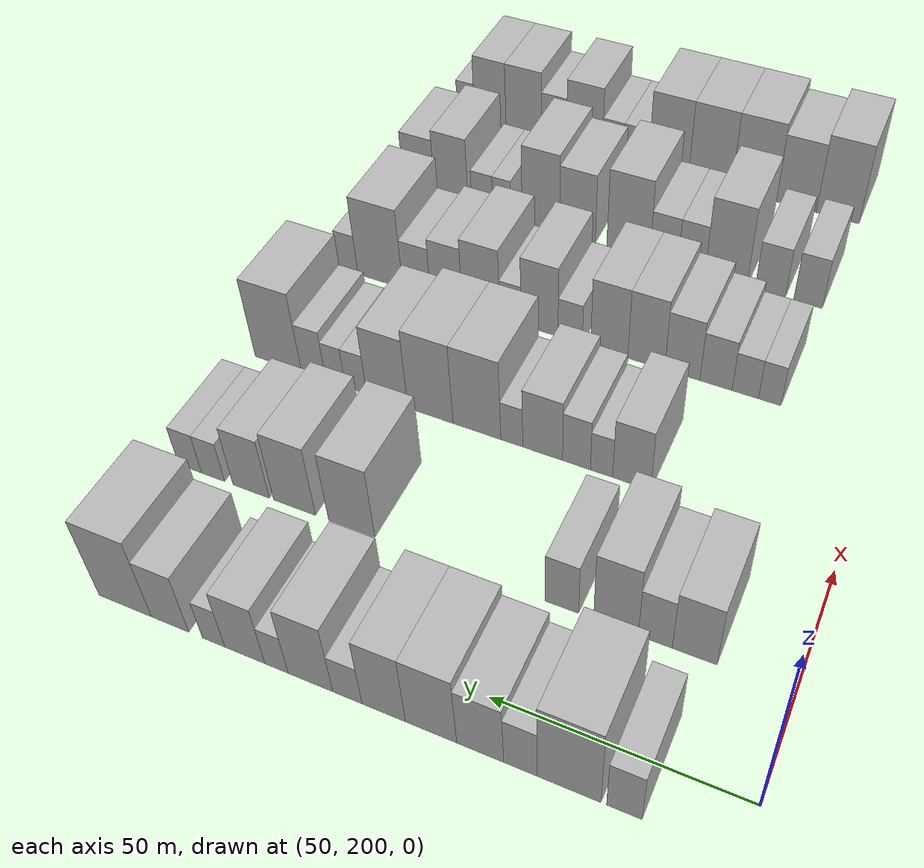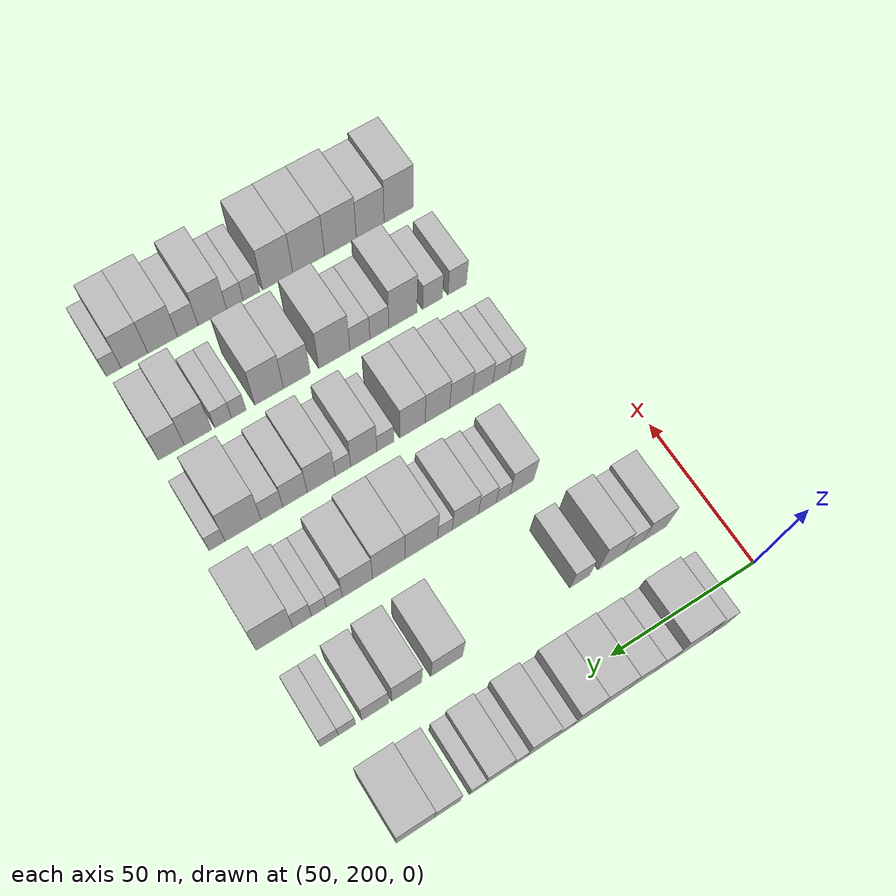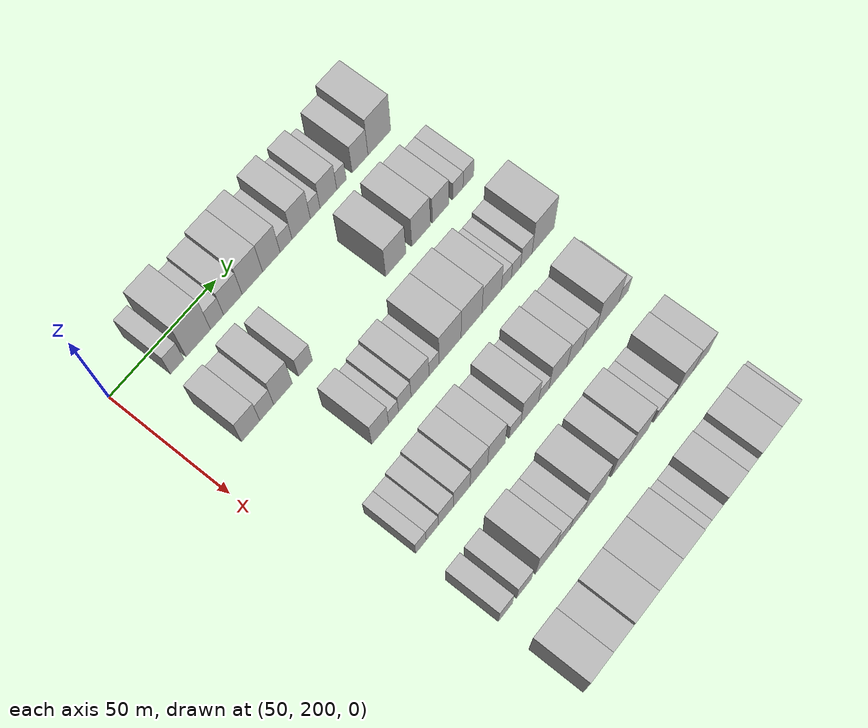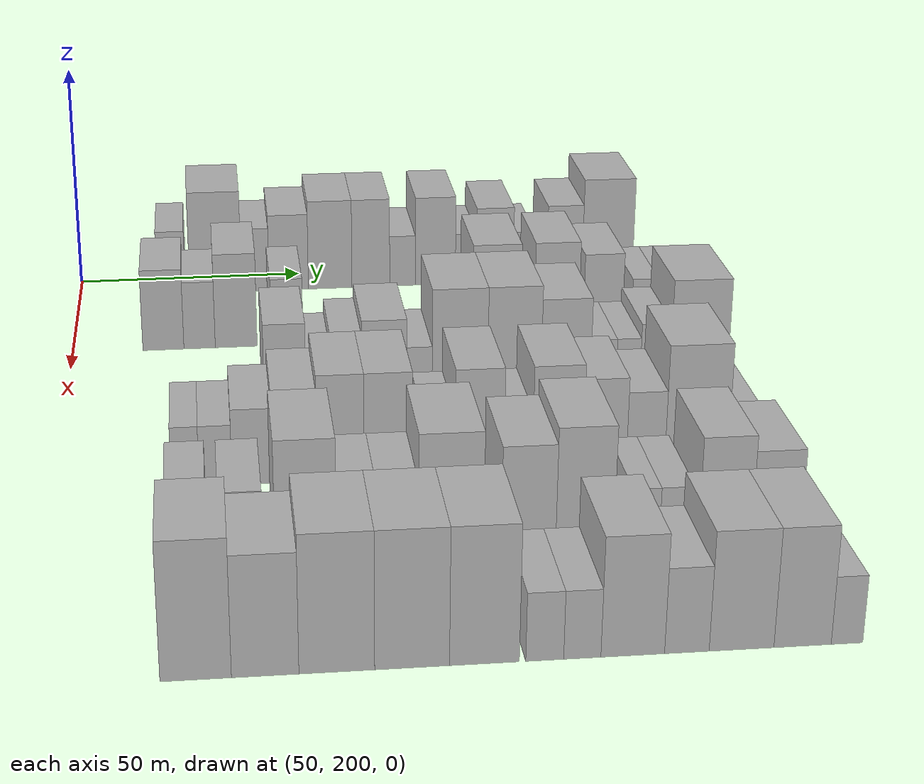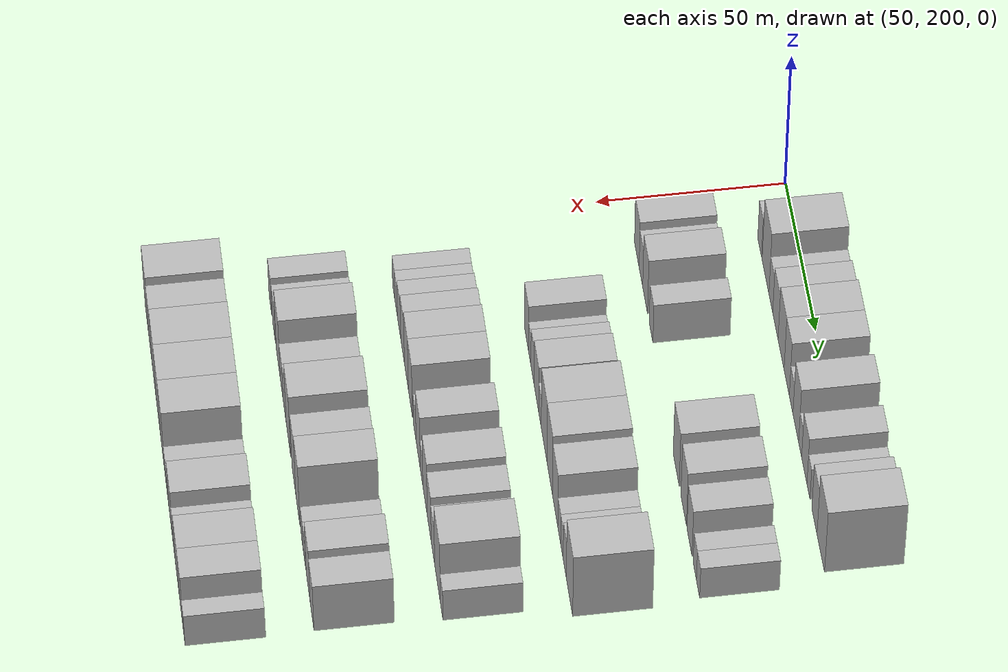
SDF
<sdf version="1.6">
 <world name="default">
  <model name="building_89">
   <static>1</static>
   <pose>50.0000 220.5800 0 0.000000 0.000000 0.000000</pose>
   <link name="link">
    <pose>0 0 7.50 0 0 0</pose>
    <collision name="collision"><geometry><box><size>20.0000 6.3352 15.0000</size></box></geometry></collision>
    <visual name="visual">
     <cast_shadows>0</cast_shadows>
     <geometry><box><size>20.0000 6.3352 15.0000</size></box></geometry>
     <material>
      <script>
       <uri>model://HANNAS_wall/materials/scripts</uri>
       <uri>model://HANNAS_wall/materials/textures</uri>
       <name>vrc/HANNAS_wall</name>
      </script>
     </material>
    </visual>
   </link>
  </model>
  <model name="building_90">
   <static>1</static>
   <pose>50.0000 230.5719 0 0.000000 0.000000 0.000000</pose>
   <link name="link">
    <pose>0 0 12.00 0 0 0</pose>
    <collision name="collision"><geometry><box><size>20.0000 11.6486 24.0000</size></box></geometry></collision>
    <visual name="visual">
     <cast_shadows>0</cast_shadows>
     <geometry><box><size>20.0000 11.6486 24.0000</size></box></geometry>
     <material>
      <script>
       <uri>model://HANNAS_wall/materials/scripts</uri>
       <uri>model://HANNAS_wall/materials/textures</uri>
       <name>vrc/HANNAS_wall</name>
      </script>
     </material>
    </visual>
   </link>
  </model>
  <model name="building_91">
   <static>1</static>
   <pose>50.0000 239.5321 0 0.000000 0.000000 0.000000</pose>
   <link name="link">
    <pose>0 0 7.50 0 0 0</pose>
    <collision name="collision"><geometry><box><size>20.0000 6.2717 15.0000</size></box></geometry></collision>
    <visual name="visual">
     <cast_shadows>0</cast_shadows>
     <geometry><box><size>20.0000 6.2717 15.0000</size></box></geometry>
     <material>
      <script>
       <uri>model://HANNAS_wall/materials/scripts</uri>
       <uri>model://HANNAS_wall/materials/textures</uri>
       <name>vrc/HANNAS_wall</name>
      </script>
     </material>
    </visual>
   </link>
  </model>
  <model name="building_92">
   <static>1</static>
   <pose>50.0000 247.1359 0 0.000000 0.000000 0.000000</pose>
   <link name="link">
    <pose>0 0 9.00 0 0 0</pose>
    <collision name="collision"><geometry><box><size>20.0000 8.9359 18.0000</size></box></geometry></collision>
    <visual name="visual">
     <cast_shadows>0</cast_shadows>
     <geometry><box><size>20.0000 8.9359 18.0000</size></box></geometry>
     <material>
      <script>
       <uri>model://HANNAS_wall/materials/scripts</uri>
       <uri>model://HANNAS_wall/materials/textures</uri>
       <name>vrc/HANNAS_wall</name>
      </script>
     </material>
    </visual>
   </link>
  </model>
  <model name="building_93">
   <static>1</static>
   <pose>50.0000 256.5881 0 0.000000 0.000000 0.000000</pose>
   <link name="link">
    <pose>0 0 10.50 0 0 0</pose>
    <collision name="collision"><geometry><box><size>20.0000 9.9685 21.0000</size></box></geometry></collision>
    <visual name="visual">
     <cast_shadows>0</cast_shadows>
     <geometry><box><size>20.0000 9.9685 21.0000</size></box></geometry>
     <material>
      <script>
       <uri>model://HANNAS_wall/materials/scripts</uri>
       <uri>model://HANNAS_wall/materials/textures</uri>
       <name>vrc/HANNAS_wall</name>
      </script>
     </material>
    </visual>
   </link>
  </model>
  <model name="building_94">
   <static>1</static>
   <pose>50.0000 265.9049 0 0.000000 0.000000 0.000000</pose>
   <link name="link">
    <pose>0 0 10.50 0 0 0</pose>
    <collision name="collision"><geometry><box><size>20.0000 8.6650 21.0000</size></box></geometry></collision>
    <visual name="visual">
     <cast_shadows>0</cast_shadows>
     <geometry><box><size>20.0000 8.6650 21.0000</size></box></geometry>
     <material>
      <script>
       <uri>model://HANNAS_wall/materials/scripts</uri>
       <uri>model://HANNAS_wall/materials/textures</uri>
       <name>vrc/HANNAS_wall</name>
      </script>
     </material>
    </visual>
   </link>
  </model>
  <model name="building_95">
   <static>1</static>
   <pose>50.0000 273.1896 0 0.000000 0.000000 0.000000</pose>
   <link name="link">
    <pose>0 0 6.00 0 0 0</pose>
    <collision name="collision"><geometry><box><size>20.0000 5.9045 12.0000</size></box></geometry></collision>
    <visual name="visual">
     <cast_shadows>0</cast_shadows>
     <geometry><box><size>20.0000 5.9045 12.0000</size></box></geometry>
     <material>
      <script>
       <uri>model://HANNAS_wall/materials/scripts</uri>
       <uri>model://HANNAS_wall/materials/textures</uri>
       <name>vrc/HANNAS_wall</name>
      </script>
     </material>
    </visual>
   </link>
  </model>
  <model name="building_96">
   <static>1</static>
   <pose>50.0000 280.7574 0 0.000000 0.000000 0.000000</pose>
   <link name="link">
    <pose>0 0 10.50 0 0 0</pose>
    <collision name="collision"><geometry><box><size>20.0000 9.2312 21.0000</size></box></geometry></collision>
    <visual name="visual">
     <cast_shadows>0</cast_shadows>
     <geometry><box><size>20.0000 9.2312 21.0000</size></box></geometry>
     <material>
      <script>
       <uri>model://HANNAS_wall/materials/scripts</uri>
       <uri>model://HANNAS_wall/materials/textures</uri>
       <name>vrc/HANNAS_wall</name>
      </script>
     </material>
    </visual>
   </link>
  </model>
  <model name="building_97">
   <static>1</static>
   <pose>50.0000 287.8098 0 0.000000 0.000000 0.000000</pose>
   <link name="link">
    <pose>0 0 6.00 0 0 0</pose>
    <collision name="collision"><geometry><box><size>20.0000 4.8734 12.0000</size></box></geometry></collision>
    <visual name="visual">
     <cast_shadows>0</cast_shadows>
     <geometry><box><size>20.0000 4.8734 12.0000</size></box></geometry>
     <material>
      <script>
       <uri>model://HANNAS_wall/materials/scripts</uri>
       <uri>model://HANNAS_wall/materials/textures</uri>
       <name>vrc/HANNAS_wall</name>
      </script>
     </material>
    </visual>
   </link>
  </model>
  <model name="building_98">
   <static>1</static>
   <pose>50.0000 294.5105 0 0.000000 0.000000 0.000000</pose>
   <link name="link">
    <pose>0 0 9.00 0 0 0</pose>
    <collision name="collision"><geometry><box><size>20.0000 8.5280 18.0000</size></box></geometry></collision>
    <visual name="visual">
     <cast_shadows>0</cast_shadows>
     <geometry><box><size>20.0000 8.5280 18.0000</size></box></geometry>
     <material>
      <script>
       <uri>model://HANNAS_wall/materials/scripts</uri>
       <uri>model://HANNAS_wall/materials/textures</uri>
       <name>vrc/HANNAS_wall</name>
      </script>
     </material>
    </visual>
   </link>
  </model>
  <model name="building_99">
   <static>1</static>
   <pose>50.0000 301.1923 0 0.000000 0.000000 0.000000</pose>
   <link name="link">
    <pose>0 0 6.00 0 0 0</pose>
    <collision name="collision"><geometry><box><size>20.0000 4.8356 12.0000</size></box></geometry></collision>
    <visual name="visual">
     <cast_shadows>0</cast_shadows>
     <geometry><box><size>20.0000 4.8356 12.0000</size></box></geometry>
     <material>
      <script>
       <uri>model://HANNAS_wall/materials/scripts</uri>
       <uri>model://HANNAS_wall/materials/textures</uri>
       <name>vrc/HANNAS_wall</name>
      </script>
     </material>
    </visual>
   </link>
  </model>
  <model name="building_100">
   <static>1</static>
   <pose>50.0000 310.7289 0 0.000000 0.000000 0.000000</pose>
   <link name="link">
    <pose>0 0 9.00 0 0 0</pose>
    <collision name="collision"><geometry><box><size>20.0000 8.2376 18.0000</size></box></geometry></collision>
    <visual name="visual">
     <cast_shadows>0</cast_shadows>
     <geometry><box><size>20.0000 8.2376 18.0000</size></box></geometry>
     <material>
      <script>
       <uri>model://HANNAS_wall/materials/scripts</uri>
       <uri>model://HANNAS_wall/materials/textures</uri>
       <name>vrc/HANNAS_wall</name>
      </script>
     </material>
    </visual>
   </link>
  </model>
  <model name="building_101">
   <static>1</static>
   <pose>50.0000 320.7621 0 0.000000 0.000000 0.000000</pose>
   <link name="link">
    <pose>0 0 12.00 0 0 0</pose>
    <collision name="collision"><geometry><box><size>20.0000 11.8289 24.0000</size></box></geometry></collision>
    <visual name="visual">
     <cast_shadows>0</cast_shadows>
     <geometry><box><size>20.0000 11.8289 24.0000</size></box></geometry>
     <material>
      <script>
       <uri>model://HANNAS_wall/materials/scripts</uri>
       <uri>model://HANNAS_wall/materials/textures</uri>
       <name>vrc/HANNAS_wall</name>
      </script>
     </material>
    </visual>
   </link>
  </model>
  <model name="building_212">
   <static>1</static>
   <pose>82.0000 219.0305 0 0.000000 0.000000 0.000000</pose>
   <link name="link">
    <pose>0 0 9.00 0 0 0</pose>
    <collision name="collision"><geometry><box><size>20.0000 8.6243 18.0000</size></box></geometry></collision>
    <visual name="visual">
     <cast_shadows>0</cast_shadows>
     <geometry><box><size>20.0000 8.6243 18.0000</size></box></geometry>
     <material>
      <script>
       <uri>model://HANNAS_wall/materials/scripts</uri>
       <uri>model://HANNAS_wall/materials/textures</uri>
       <name>vrc/HANNAS_wall</name>
      </script>
     </material>
    </visual>
   </link>
  </model>
  <model name="building_213">
   <static>1</static>
   <pose>82.0000 226.6491 0 0.000000 0.000000 0.000000</pose>
   <link name="link">
    <pose>0 0 7.50 0 0 0</pose>
    <collision name="collision"><geometry><box><size>20.0000 6.6129 15.0000</size></box></geometry></collision>
    <visual name="visual">
     <cast_shadows>0</cast_shadows>
     <geometry><box><size>20.0000 6.6129 15.0000</size></box></geometry>
     <material>
      <script>
       <uri>model://HANNAS_wall/materials/scripts</uri>
       <uri>model://HANNAS_wall/materials/textures</uri>
       <name>vrc/HANNAS_wall</name>
      </script>
     </material>
    </visual>
   </link>
  </model>
  <model name="building_214">
   <static>1</static>
   <pose>82.0000 234.3882 0 0.000000 0.000000 0.000000</pose>
   <link name="link">
    <pose>0 0 10.50 0 0 0</pose>
    <collision name="collision"><geometry><box><size>20.0000 8.8653 21.0000</size></box></geometry></collision>
    <visual name="visual">
     <cast_shadows>0</cast_shadows>
     <geometry><box><size>20.0000 8.8653 21.0000</size></box></geometry>
     <material>
      <script>
       <uri>model://HANNAS_wall/materials/scripts</uri>
       <uri>model://HANNAS_wall/materials/textures</uri>
       <name>vrc/HANNAS_wall</name>
      </script>
     </material>
    </visual>
   </link>
  </model>
  <model name="building_215">
   <static>1</static>
   <pose>82.0000 245.1997 0 0.000000 0.000000 0.000000</pose>
   <link name="link">
    <pose>0 0 7.50 0 0 0</pose>
    <collision name="collision"><geometry><box><size>20.0000 6.7576 15.0000</size></box></geometry></collision>
    <visual name="visual">
     <cast_shadows>0</cast_shadows>
     <geometry><box><size>20.0000 6.7576 15.0000</size></box></geometry>
     <material>
      <script>
       <uri>model://HANNAS_wall/materials/scripts</uri>
       <uri>model://HANNAS_wall/materials/textures</uri>
       <name>vrc/HANNAS_wall</name>
      </script>
     </material>
    </visual>
   </link>
  </model>
  <model name="building_216">
   <static>1</static>
   <pose>82.0000 290.1414 0 0.000000 0.000000 0.000000</pose>
   <link name="link">
    <pose>0 0 10.50 0 0 0</pose>
    <collision name="collision"><geometry><box><size>20.0000 10.3753 21.0000</size></box></geometry></collision>
    <visual name="visual">
     <cast_shadows>0</cast_shadows>
     <geometry><box><size>20.0000 10.3753 21.0000</size></box></geometry>
     <material>
      <script>
       <uri>model://HANNAS_wall/materials/scripts</uri>
       <uri>model://HANNAS_wall/materials/textures</uri>
       <name>vrc/HANNAS_wall</name>
      </script>
     </material>
    </visual>
   </link>
  </model>
  <model name="building_217">
   <static>1</static>
   <pose>82.0000 303.1638 0 0.000000 0.000000 0.000000</pose>
   <link name="link">
    <pose>0 0 10.50 0 0 0</pose>
    <collision name="collision"><geometry><box><size>20.0000 9.6696 21.0000</size></box></geometry></collision>
    <visual name="visual">
     <cast_shadows>0</cast_shadows>
     <geometry><box><size>20.0000 9.6696 21.0000</size></box></geometry>
     <material>
      <script>
       <uri>model://HANNAS_wall/materials/scripts</uri>
       <uri>model://HANNAS_wall/materials/textures</uri>
       <name>vrc/HANNAS_wall</name>
      </script>
     </material>
    </visual>
   </link>
  </model>
  <model name="building_218">
   <static>1</static>
   <pose>82.0000 313.2836 0 0.000000 0.000000 0.000000</pose>
   <link name="link">
    <pose>0 0 9.00 0 0 0</pose>
    <collision name="collision"><geometry><box><size>20.0000 8.5700 18.0000</size></box></geometry></collision>
    <visual name="visual">
     <cast_shadows>0</cast_shadows>
     <geometry><box><size>20.0000 8.5700 18.0000</size></box></geometry>
     <material>
      <script>
       <uri>model://HANNAS_wall/materials/scripts</uri>
       <uri>model://HANNAS_wall/materials/textures</uri>
       <name>vrc/HANNAS_wall</name>
      </script>
     </material>
    </visual>
   </link>
  </model>
  <model name="building_219">
   <static>1</static>
   <pose>82.0000 322.3333 0 0.000000 0.000000 0.000000</pose>
   <link name="link">
    <pose>0 0 6.00 0 0 0</pose>
    <collision name="collision"><geometry><box><size>20.0000 5.5294 12.0000</size></box></geometry></collision>
    <visual name="visual">
     <cast_shadows>0</cast_shadows>
     <geometry><box><size>20.0000 5.5294 12.0000</size></box></geometry>
     <material>
      <script>
       <uri>model://HANNAS_wall/materials/scripts</uri>
       <uri>model://HANNAS_wall/materials/textures</uri>
       <name>vrc/HANNAS_wall</name>
      </script>
     </material>
    </visual>
   </link>
  </model>
  <model name="building_220">
   <static>1</static>
   <pose>82.0000 327.8939 0 0.000000 0.000000 0.000000</pose>
   <link name="link">
    <pose>0 0 6.00 0 0 0</pose>
    <collision name="collision"><geometry><box><size>20.0000 5.5918 12.0000</size></box></geometry></collision>
    <visual name="visual">
     <cast_shadows>0</cast_shadows>
     <geometry><box><size>20.0000 5.5918 12.0000</size></box></geometry>
     <material>
      <script>
       <uri>model://HANNAS_wall/materials/scripts</uri>
       <uri>model://HANNAS_wall/materials/textures</uri>
       <name>vrc/HANNAS_wall</name>
      </script>
     </material>
    </visual>
   </link>
  </model>
  <model name="building_325">
   <static>1</static>
   <pose>114.0000 243.2539 0 0.000000 0.000000 0.000000</pose>
   <link name="link">
    <pose>0 0 9.00 0 0 0</pose>
    <collision name="collision"><geometry><box><size>20.0000 8.2488 18.0000</size></box></geometry></collision>
    <visual name="visual">
     <cast_shadows>0</cast_shadows>
     <geometry><box><size>20.0000 8.2488 18.0000</size></box></geometry>
     <material>
      <script>
       <uri>model://HANNAS_wall/materials/scripts</uri>
       <uri>model://HANNAS_wall/materials/textures</uri>
       <name>vrc/HANNAS_wall</name>
      </script>
     </material>
    </visual>
   </link>
  </model>
  <model name="building_326">
   <static>1</static>
   <pose>114.0000 249.8145 0 0.000000 0.000000 0.000000</pose>
   <link name="link">
    <pose>0 0 6.00 0 0 0</pose>
    <collision name="collision"><geometry><box><size>20.0000 4.8725 12.0000</size></box></geometry></collision>
    <visual name="visual">
     <cast_shadows>0</cast_shadows>
     <geometry><box><size>20.0000 4.8725 12.0000</size></box></geometry>
     <material>
      <script>
       <uri>model://HANNAS_wall/materials/scripts</uri>
       <uri>model://HANNAS_wall/materials/textures</uri>
       <name>vrc/HANNAS_wall</name>
      </script>
     </material>
    </visual>
   </link>
  </model>
  <model name="building_327">
   <static>1</static>
   <pose>114.0000 255.3429 0 0.000000 0.000000 0.000000</pose>
   <link name="link">
    <pose>0 0 7.50 0 0 0</pose>
    <collision name="collision"><geometry><box><size>20.0000 6.1842 15.0000</size></box></geometry></collision>
    <visual name="visual">
     <cast_shadows>0</cast_shadows>
     <geometry><box><size>20.0000 6.1842 15.0000</size></box></geometry>
     <material>
      <script>
       <uri>model://HANNAS_wall/materials/scripts</uri>
       <uri>model://HANNAS_wall/materials/textures</uri>
       <name>vrc/HANNAS_wall</name>
      </script>
     </material>
    </visual>
   </link>
  </model>
  <model name="building_328">
   <static>1</static>
   <pose>114.0000 262.9197 0 0.000000 0.000000 0.000000</pose>
   <link name="link">
    <pose>0 0 9.00 0 0 0</pose>
    <collision name="collision"><geometry><box><size>20.0000 8.9694 18.0000</size></box></geometry></collision>
    <visual name="visual">
     <cast_shadows>0</cast_shadows>
     <geometry><box><size>20.0000 8.9694 18.0000</size></box></geometry>
     <material>
      <script>
       <uri>model://HANNAS_wall/materials/scripts</uri>
       <uri>model://HANNAS_wall/materials/textures</uri>
       <name>vrc/HANNAS_wall</name>
      </script>
     </material>
    </visual>
   </link>
  </model>
  <model name="building_329">
   <static>1</static>
   <pose>114.0000 269.9115 0 0.000000 0.000000 0.000000</pose>
   <link name="link">
    <pose>0 0 6.00 0 0 0</pose>
    <collision name="collision"><geometry><box><size>20.0000 5.0141 12.0000</size></box></geometry></collision>
    <visual name="visual">
     <cast_shadows>0</cast_shadows>
     <geometry><box><size>20.0000 5.0141 12.0000</size></box></geometry>
     <material>
      <script>
       <uri>model://HANNAS_wall/materials/scripts</uri>
       <uri>model://HANNAS_wall/materials/textures</uri>
       <name>vrc/HANNAS_wall</name>
      </script>
     </material>
    </visual>
   </link>
  </model>
  <model name="building_330">
   <static>1</static>
   <pose>114.0000 277.9728 0 0.000000 0.000000 0.000000</pose>
   <link name="link">
    <pose>0 0 12.00 0 0 0</pose>
    <collision name="collision"><geometry><box><size>20.0000 11.1086 24.0000</size></box></geometry></collision>
    <visual name="visual">
     <cast_shadows>0</cast_shadows>
     <geometry><box><size>20.0000 11.1086 24.0000</size></box></geometry>
     <material>
      <script>
       <uri>model://HANNAS_wall/materials/scripts</uri>
       <uri>model://HANNAS_wall/materials/textures</uri>
       <name>vrc/HANNAS_wall</name>
      </script>
     </material>
    </visual>
   </link>
  </model>
  <model name="building_331">
   <static>1</static>
   <pose>114.0000 288.9025 0 0.000000 0.000000 0.000000</pose>
   <link name="link">
    <pose>0 0 12.00 0 0 0</pose>
    <collision name="collision"><geometry><box><size>20.0000 10.7508 24.0000</size></box></geometry></collision>
    <visual name="visual">
     <cast_shadows>0</cast_shadows>
     <geometry><box><size>20.0000 10.7508 24.0000</size></box></geometry>
     <material>
      <script>
       <uri>model://HANNAS_wall/materials/scripts</uri>
       <uri>model://HANNAS_wall/materials/textures</uri>
       <name>vrc/HANNAS_wall</name>
      </script>
     </material>
    </visual>
   </link>
  </model>
  <model name="building_332">
   <static>1</static>
   <pose>114.0000 299.2854 0 0.000000 0.000000 0.000000</pose>
   <link name="link">
    <pose>0 0 10.50 0 0 0</pose>
    <collision name="collision"><geometry><box><size>20.0000 10.0150 21.0000</size></box></geometry></collision>
    <visual name="visual">
     <cast_shadows>0</cast_shadows>
     <geometry><box><size>20.0000 10.0150 21.0000</size></box></geometry>
     <material>
      <script>
       <uri>model://HANNAS_wall/materials/scripts</uri>
       <uri>model://HANNAS_wall/materials/textures</uri>
       <name>vrc/HANNAS_wall</name>
      </script>
     </material>
    </visual>
   </link>
  </model>
  <model name="building_333">
   <static>1</static>
   <pose>114.0000 306.9075 0 0.000000 0.000000 0.000000</pose>
   <link name="link">
    <pose>0 0 6.00 0 0 0</pose>
    <collision name="collision"><geometry><box><size>20.0000 5.2292 12.0000</size></box></geometry></collision>
    <visual name="visual">
     <cast_shadows>0</cast_shadows>
     <geometry><box><size>20.0000 5.2292 12.0000</size></box></geometry>
     <material>
      <script>
       <uri>model://HANNAS_wall/materials/scripts</uri>
       <uri>model://HANNAS_wall/materials/textures</uri>
       <name>vrc/HANNAS_wall</name>
      </script>
     </material>
    </visual>
   </link>
  </model>
  <model name="building_334">
   <static>1</static>
   <pose>114.0000 311.9484 0 0.000000 0.000000 0.000000</pose>
   <link name="link">
    <pose>0 0 6.00 0 0 0</pose>
    <collision name="collision"><geometry><box><size>20.0000 4.8525 12.0000</size></box></geometry></collision>
    <visual name="visual">
     <cast_shadows>0</cast_shadows>
     <geometry><box><size>20.0000 4.8525 12.0000</size></box></geometry>
     <material>
      <script>
       <uri>model://HANNAS_wall/materials/scripts</uri>
       <uri>model://HANNAS_wall/materials/textures</uri>
       <name>vrc/HANNAS_wall</name>
      </script>
     </material>
    </visual>
   </link>
  </model>
  <model name="building_335">
   <static>1</static>
   <pose>114.0000 317.4246 0 0.000000 0.000000 0.000000</pose>
   <link name="link">
    <pose>0 0 7.50 0 0 0</pose>
    <collision name="collision"><geometry><box><size>20.0000 6.1000 15.0000</size></box></geometry></collision>
    <visual name="visual">
     <cast_shadows>0</cast_shadows>
     <geometry><box><size>20.0000 6.1000 15.0000</size></box></geometry>
     <material>
      <script>
       <uri>model://HANNAS_wall/materials/scripts</uri>
       <uri>model://HANNAS_wall/materials/textures</uri>
       <name>vrc/HANNAS_wall</name>
      </script>
     </material>
    </visual>
   </link>
  </model>
  <model name="building_336">
   <static>1</static>
   <pose>114.0000 326.3805 0 0.000000 0.000000 0.000000</pose>
   <link name="link">
    <pose>0 0 12.00 0 0 0</pose>
    <collision name="collision"><geometry><box><size>20.0000 11.8119 24.0000</size></box></geometry></collision>
    <visual name="visual">
     <cast_shadows>0</cast_shadows>
     <geometry><box><size>20.0000 11.8119 24.0000</size></box></geometry>
     <material>
      <script>
       <uri>model://HANNAS_wall/materials/scripts</uri>
       <uri>model://HANNAS_wall/materials/textures</uri>
       <name>vrc/HANNAS_wall</name>
      </script>
     </material>
    </visual>
   </link>
  </model>
  <model name="building_449">
   <static>1</static>
   <pose>146.0000 223.5713 0 0.000000 0.000000 0.000000</pose>
   <link name="link">
    <pose>0 0 6.00 0 0 0</pose>
    <collision name="collision"><geometry><box><size>20.0000 5.0233 12.0000</size></box></geometry></collision>
    <visual name="visual">
     <cast_shadows>0</cast_shadows>
     <geometry><box><size>20.0000 5.0233 12.0000</size></box></geometry>
     <material>
      <script>
       <uri>model://HANNAS_wall/materials/scripts</uri>
       <uri>model://HANNAS_wall/materials/textures</uri>
       <name>vrc/HANNAS_wall</name>
      </script>
     </material>
    </visual>
   </link>
  </model>
  <model name="building_450">
   <static>1</static>
   <pose>146.0000 229.0529 0 0.000000 0.000000 0.000000</pose>
   <link name="link">
    <pose>0 0 6.00 0 0 0</pose>
    <collision name="collision"><geometry><box><size>20.0000 5.9398 12.0000</size></box></geometry></collision>
    <visual name="visual">
     <cast_shadows>0</cast_shadows>
     <geometry><box><size>20.0000 5.9398 12.0000</size></box></geometry>
     <material>
      <script>
       <uri>model://HANNAS_wall/materials/scripts</uri>
       <uri>model://HANNAS_wall/materials/textures</uri>
       <name>vrc/HANNAS_wall</name>
      </script>
     </material>
    </visual>
   </link>
  </model>
  <model name="building_451">
   <static>1</static>
   <pose>146.0000 235.6812 0 0.000000 0.000000 0.000000</pose>
   <link name="link">
    <pose>0 0 7.50 0 0 0</pose>
    <collision name="collision"><geometry><box><size>20.0000 7.3168 15.0000</size></box></geometry></collision>
    <visual name="visual">
     <cast_shadows>0</cast_shadows>
     <geometry><box><size>20.0000 7.3168 15.0000</size></box></geometry>
     <material>
      <script>
       <uri>model://HANNAS_wall/materials/scripts</uri>
       <uri>model://HANNAS_wall/materials/textures</uri>
       <name>vrc/HANNAS_wall</name>
      </script>
     </material>
    </visual>
   </link>
  </model>
  <model name="building_452">
   <static>1</static>
   <pose>146.0000 243.4016 0 0.000000 0.000000 0.000000</pose>
   <link name="link">
    <pose>0 0 9.00 0 0 0</pose>
    <collision name="collision"><geometry><box><size>20.0000 8.1240 18.0000</size></box></geometry></collision>
    <visual name="visual">
     <cast_shadows>0</cast_shadows>
     <geometry><box><size>20.0000 8.1240 18.0000</size></box></geometry>
     <material>
      <script>
       <uri>model://HANNAS_wall/materials/scripts</uri>
       <uri>model://HANNAS_wall/materials/textures</uri>
       <name>vrc/HANNAS_wall</name>
      </script>
     </material>
    </visual>
   </link>
  </model>
  <model name="building_453">
   <static>1</static>
   <pose>146.0000 251.8084 0 0.000000 0.000000 0.000000</pose>
   <link name="link">
    <pose>0 0 10.50 0 0 0</pose>
    <collision name="collision"><geometry><box><size>20.0000 8.6896 21.0000</size></box></geometry></collision>
    <visual name="visual">
     <cast_shadows>0</cast_shadows>
     <geometry><box><size>20.0000 8.6896 21.0000</size></box></geometry>
     <material>
      <script>
       <uri>model://HANNAS_wall/materials/scripts</uri>
       <uri>model://HANNAS_wall/materials/textures</uri>
       <name>vrc/HANNAS_wall</name>
      </script>
     </material>
    </visual>
   </link>
  </model>
  <model name="building_454">
   <static>1</static>
   <pose>146.0000 260.5736 0 0.000000 0.000000 0.000000</pose>
   <link name="link">
    <pose>0 0 10.50 0 0 0</pose>
    <collision name="collision"><geometry><box><size>20.0000 8.8407 21.0000</size></box></geometry></collision>
    <visual name="visual">
     <cast_shadows>0</cast_shadows>
     <geometry><box><size>20.0000 8.8407 21.0000</size></box></geometry>
     <material>
      <script>
       <uri>model://HANNAS_wall/materials/scripts</uri>
       <uri>model://HANNAS_wall/materials/textures</uri>
       <name>vrc/HANNAS_wall</name>
      </script>
     </material>
    </visual>
   </link>
  </model>
  <model name="building_455">
   <static>1</static>
   <pose>146.0000 269.9517 0 0.000000 0.000000 0.000000</pose>
   <link name="link">
    <pose>0 0 6.00 0 0 0</pose>
    <collision name="collision"><geometry><box><size>20.0000 5.9155 12.0000</size></box></geometry></collision>
    <visual name="visual">
     <cast_shadows>0</cast_shadows>
     <geometry><box><size>20.0000 5.9155 12.0000</size></box></geometry>
     <material>
      <script>
       <uri>model://HANNAS_wall/materials/scripts</uri>
       <uri>model://HANNAS_wall/materials/textures</uri>
       <name>vrc/HANNAS_wall</name>
      </script>
     </material>
    </visual>
   </link>
  </model>
  <model name="building_456">
   <static>1</static>
   <pose>146.0000 277.4268 0 0.000000 0.000000 0.000000</pose>
   <link name="link">
    <pose>0 0 10.50 0 0 0</pose>
    <collision name="collision"><geometry><box><size>20.0000 9.0346 21.0000</size></box></geometry></collision>
    <visual name="visual">
     <cast_shadows>0</cast_shadows>
     <geometry><box><size>20.0000 9.0346 21.0000</size></box></geometry>
     <material>
      <script>
       <uri>model://HANNAS_wall/materials/scripts</uri>
       <uri>model://HANNAS_wall/materials/textures</uri>
       <name>vrc/HANNAS_wall</name>
      </script>
     </material>
    </visual>
   </link>
  </model>
  <model name="building_457">
   <static>1</static>
   <pose>146.0000 284.6040 0 0.000000 0.000000 0.000000</pose>
   <link name="link">
    <pose>0 0 6.00 0 0 0</pose>
    <collision name="collision"><geometry><box><size>20.0000 5.3198 12.0000</size></box></geometry></collision>
    <visual name="visual">
     <cast_shadows>0</cast_shadows>
     <geometry><box><size>20.0000 5.3198 12.0000</size></box></geometry>
     <material>
      <script>
       <uri>model://HANNAS_wall/materials/scripts</uri>
       <uri>model://HANNAS_wall/materials/textures</uri>
       <name>vrc/HANNAS_wall</name>
      </script>
     </material>
    </visual>
   </link>
  </model>
  <model name="building_458">
   <static>1</static>
   <pose>146.0000 291.9986 0 0.000000 0.000000 0.000000</pose>
   <link name="link">
    <pose>0 0 10.50 0 0 0</pose>
    <collision name="collision"><geometry><box><size>20.0000 9.4694 21.0000</size></box></geometry></collision>
    <visual name="visual">
     <cast_shadows>0</cast_shadows>
     <geometry><box><size>20.0000 9.4694 21.0000</size></box></geometry>
     <material>
      <script>
       <uri>model://HANNAS_wall/materials/scripts</uri>
       <uri>model://HANNAS_wall/materials/textures</uri>
       <name>vrc/HANNAS_wall</name>
      </script>
     </material>
    </visual>
   </link>
  </model>
  <model name="building_459">
   <static>1</static>
   <pose>146.0000 300.8150 0 0.000000 0.000000 0.000000</pose>
   <link name="link">
    <pose>0 0 9.00 0 0 0</pose>
    <collision name="collision"><geometry><box><size>20.0000 8.1634 18.0000</size></box></geometry></collision>
    <visual name="visual">
     <cast_shadows>0</cast_shadows>
     <geometry><box><size>20.0000 8.1634 18.0000</size></box></geometry>
     <material>
      <script>
       <uri>model://HANNAS_wall/materials/scripts</uri>
       <uri>model://HANNAS_wall/materials/textures</uri>
       <name>vrc/HANNAS_wall</name>
      </script>
     </material>
    </visual>
   </link>
  </model>
  <model name="building_460">
   <static>1</static>
   <pose>146.0000 308.5239 0 0.000000 0.000000 0.000000</pose>
   <link name="link">
    <pose>0 0 7.50 0 0 0</pose>
    <collision name="collision"><geometry><box><size>20.0000 7.2544 15.0000</size></box></geometry></collision>
    <visual name="visual">
     <cast_shadows>0</cast_shadows>
     <geometry><box><size>20.0000 7.2544 15.0000</size></box></geometry>
     <material>
      <script>
       <uri>model://HANNAS_wall/materials/scripts</uri>
       <uri>model://HANNAS_wall/materials/textures</uri>
       <name>vrc/HANNAS_wall</name>
      </script>
     </material>
    </visual>
   </link>
  </model>
  <model name="building_461">
   <static>1</static>
   <pose>146.0000 318.1218 0 0.000000 0.000000 0.000000</pose>
   <link name="link">
    <pose>0 0 12.00 0 0 0</pose>
    <collision name="collision"><geometry><box><size>20.0000 11.9415 24.0000</size></box></geometry></collision>
    <visual name="visual">
     <cast_shadows>0</cast_shadows>
     <geometry><box><size>20.0000 11.9415 24.0000</size></box></geometry>
     <material>
      <script>
       <uri>model://HANNAS_wall/materials/scripts</uri>
       <uri>model://HANNAS_wall/materials/textures</uri>
       <name>vrc/HANNAS_wall</name>
      </script>
     </material>
    </visual>
   </link>
  </model>
  <model name="building_462">
   <static>1</static>
   <pose>146.0000 326.7104 0 0.000000 0.000000 0.000000</pose>
   <link name="link">
    <pose>0 0 6.00 0 0 0</pose>
    <collision name="collision"><geometry><box><size>20.0000 5.2356 12.0000</size></box></geometry></collision>
    <visual name="visual">
     <cast_shadows>0</cast_shadows>
     <geometry><box><size>20.0000 5.2356 12.0000</size></box></geometry>
     <material>
      <script>
       <uri>model://HANNAS_wall/materials/scripts</uri>
       <uri>model://HANNAS_wall/materials/textures</uri>
       <name>vrc/HANNAS_wall</name>
      </script>
     </material>
    </visual>
   </link>
  </model>
  <model name="building_566">
   <static>1</static>
   <pose>178.0000 223.8212 0 0.000000 0.000000 0.000000</pose>
   <link name="link">
    <pose>0 0 7.50 0 0 0</pose>
    <collision name="collision"><geometry><box><size>20.0000 6.7909 15.0000</size></box></geometry></collision>
    <visual name="visual">
     <cast_shadows>0</cast_shadows>
     <geometry><box><size>20.0000 6.7909 15.0000</size></box></geometry>
     <material>
      <script>
       <uri>model://HANNAS_wall/materials/scripts</uri>
       <uri>model://HANNAS_wall/materials/textures</uri>
       <name>vrc/HANNAS_wall</name>
      </script>
     </material>
    </visual>
   </link>
  </model>
  <model name="building_567">
   <static>1</static>
   <pose>178.0000 232.8533 0 0.000000 0.000000 0.000000</pose>
   <link name="link">
    <pose>0 0 7.50 0 0 0</pose>
    <collision name="collision"><geometry><box><size>20.0000 7.2733 15.0000</size></box></geometry></collision>
    <visual name="visual">
     <cast_shadows>0</cast_shadows>
     <geometry><box><size>20.0000 7.2733 15.0000</size></box></geometry>
     <material>
      <script>
       <uri>model://HANNAS_wall/materials/scripts</uri>
       <uri>model://HANNAS_wall/materials/textures</uri>
       <name>vrc/HANNAS_wall</name>
      </script>
     </material>
    </visual>
   </link>
  </model>
  <model name="building_568">
   <static>1</static>
   <pose>178.0000 243.6174 0 0.000000 0.000000 0.000000</pose>
   <link name="link">
    <pose>0 0 12.00 0 0 0</pose>
    <collision name="collision"><geometry><box><size>20.0000 10.2550 24.0000</size></box></geometry></collision>
    <visual name="visual">
     <cast_shadows>0</cast_shadows>
     <geometry><box><size>20.0000 10.2550 24.0000</size></box></geometry>
     <material>
      <script>
       <uri>model://HANNAS_wall/materials/scripts</uri>
       <uri>model://HANNAS_wall/materials/textures</uri>
       <name>vrc/HANNAS_wall</name>
      </script>
     </material>
    </visual>
   </link>
  </model>
  <model name="building_569">
   <static>1</static>
   <pose>178.0000 252.1137 0 0.000000 0.000000 0.000000</pose>
   <link name="link">
    <pose>0 0 7.50 0 0 0</pose>
    <collision name="collision"><geometry><box><size>20.0000 6.7375 15.0000</size></box></geometry></collision>
    <visual name="visual">
     <cast_shadows>0</cast_shadows>
     <geometry><box><size>20.0000 6.7375 15.0000</size></box></geometry>
     <material>
      <script>
       <uri>model://HANNAS_wall/materials/scripts</uri>
       <uri>model://HANNAS_wall/materials/textures</uri>
       <name>vrc/HANNAS_wall</name>
      </script>
     </material>
    </visual>
   </link>
  </model>
  <model name="building_570">
   <static>1</static>
   <pose>178.0000 259.0361 0 0.000000 0.000000 0.000000</pose>
   <link name="link">
    <pose>0 0 7.50 0 0 0</pose>
    <collision name="collision"><geometry><box><size>20.0000 7.1075 15.0000</size></box></geometry></collision>
    <visual name="visual">
     <cast_shadows>0</cast_shadows>
     <geometry><box><size>20.0000 7.1075 15.0000</size></box></geometry>
     <material>
      <script>
       <uri>model://HANNAS_wall/materials/scripts</uri>
       <uri>model://HANNAS_wall/materials/textures</uri>
       <name>vrc/HANNAS_wall</name>
      </script>
     </material>
    </visual>
   </link>
  </model>
  <model name="building_571">
   <static>1</static>
   <pose>178.0000 268.0905 0 0.000000 0.000000 0.000000</pose>
   <link name="link">
    <pose>0 0 12.00 0 0 0</pose>
    <collision name="collision"><geometry><box><size>20.0000 11.0013 24.0000</size></box></geometry></collision>
    <visual name="visual">
     <cast_shadows>0</cast_shadows>
     <geometry><box><size>20.0000 11.0013 24.0000</size></box></geometry>
     <material>
      <script>
       <uri>model://HANNAS_wall/materials/scripts</uri>
       <uri>model://HANNAS_wall/materials/textures</uri>
       <name>vrc/HANNAS_wall</name>
      </script>
     </material>
    </visual>
   </link>
  </model>
  <model name="building_572">
   <static>1</static>
   <pose>178.0000 281.2419 0 0.000000 0.000000 0.000000</pose>
   <link name="link">
    <pose>0 0 10.50 0 0 0</pose>
    <collision name="collision"><geometry><box><size>20.0000 9.3014 21.0000</size></box></geometry></collision>
    <visual name="visual">
     <cast_shadows>0</cast_shadows>
     <geometry><box><size>20.0000 9.3014 21.0000</size></box></geometry>
     <material>
      <script>
       <uri>model://HANNAS_wall/materials/scripts</uri>
       <uri>model://HANNAS_wall/materials/textures</uri>
       <name>vrc/HANNAS_wall</name>
      </script>
     </material>
    </visual>
   </link>
  </model>
  <model name="building_573">
   <static>1</static>
   <pose>178.0000 290.8749 0 0.000000 0.000000 0.000000</pose>
   <link name="link">
    <pose>0 0 12.00 0 0 0</pose>
    <collision name="collision"><geometry><box><size>20.0000 9.9646 24.0000</size></box></geometry></collision>
    <visual name="visual">
     <cast_shadows>0</cast_shadows>
     <geometry><box><size>20.0000 9.9646 24.0000</size></box></geometry>
     <material>
      <script>
       <uri>model://HANNAS_wall/materials/scripts</uri>
       <uri>model://HANNAS_wall/materials/textures</uri>
       <name>vrc/HANNAS_wall</name>
      </script>
     </material>
    </visual>
   </link>
  </model>
  <model name="building_574">
   <static>1</static>
   <pose>178.0000 301.3120 0 0.000000 0.000000 0.000000</pose>
   <link name="link">
    <pose>0 0 6.00 0 0 0</pose>
    <collision name="collision"><geometry><box><size>20.0000 4.9095 12.0000</size></box></geometry></collision>
    <visual name="visual">
     <cast_shadows>0</cast_shadows>
     <geometry><box><size>20.0000 4.9095 12.0000</size></box></geometry>
     <material>
      <script>
       <uri>model://HANNAS_wall/materials/scripts</uri>
       <uri>model://HANNAS_wall/materials/textures</uri>
       <name>vrc/HANNAS_wall</name>
      </script>
     </material>
    </visual>
   </link>
  </model>
  <model name="building_575">
   <static>1</static>
   <pose>178.0000 306.6412 0 0.000000 0.000000 0.000000</pose>
   <link name="link">
    <pose>0 0 6.00 0 0 0</pose>
    <collision name="collision"><geometry><box><size>20.0000 5.7490 12.0000</size></box></geometry></collision>
    <visual name="visual">
     <cast_shadows>0</cast_shadows>
     <geometry><box><size>20.0000 5.7490 12.0000</size></box></geometry>
     <material>
      <script>
       <uri>model://HANNAS_wall/materials/scripts</uri>
       <uri>model://HANNAS_wall/materials/textures</uri>
       <name>vrc/HANNAS_wall</name>
      </script>
     </material>
    </visual>
   </link>
  </model>
  <model name="building_576">
   <static>1</static>
   <pose>178.0000 315.1472 0 0.000000 0.000000 0.000000</pose>
   <link name="link">
    <pose>0 0 10.50 0 0 0</pose>
    <collision name="collision"><geometry><box><size>20.0000 9.2629 21.0000</size></box></geometry></collision>
    <visual name="visual">
     <cast_shadows>0</cast_shadows>
     <geometry><box><size>20.0000 9.2629 21.0000</size></box></geometry>
     <material>
      <script>
       <uri>model://HANNAS_wall/materials/scripts</uri>
       <uri>model://HANNAS_wall/materials/textures</uri>
       <name>vrc/HANNAS_wall</name>
      </script>
     </material>
    </visual>
   </link>
  </model>
  <model name="building_577">
   <static>1</static>
   <pose>178.0000 324.1277 0 0.000000 0.000000 0.000000</pose>
   <link name="link">
    <pose>0 0 9.00 0 0 0</pose>
    <collision name="collision"><geometry><box><size>20.0000 8.6982 18.0000</size></box></geometry></collision>
    <visual name="visual">
     <cast_shadows>0</cast_shadows>
     <geometry><box><size>20.0000 8.6982 18.0000</size></box></geometry>
     <material>
      <script>
       <uri>model://HANNAS_wall/materials/scripts</uri>
       <uri>model://HANNAS_wall/materials/textures</uri>
       <name>vrc/HANNAS_wall</name>
      </script>
     </material>
    </visual>
   </link>
  </model>
  <model name="building_682">
   <static>1</static>
   <pose>210.0000 225.0116 0 0.000000 0.000000 0.000000</pose>
   <link name="link">
    <pose>0 0 12.00 0 0 0</pose>
    <collision name="collision"><geometry><box><size>20.0000 10.7954 24.0000</size></box></geometry></collision>
    <visual name="visual">
     <cast_shadows>0</cast_shadows>
     <geometry><box><size>20.0000 10.7954 24.0000</size></box></geometry>
     <material>
      <script>
       <uri>model://HANNAS_wall/materials/scripts</uri>
       <uri>model://HANNAS_wall/materials/textures</uri>
       <name>vrc/HANNAS_wall</name>
      </script>
     </material>
    </visual>
   </link>
  </model>
  <model name="building_683">
   <static>1</static>
   <pose>210.0000 235.5349 0 0.000000 0.000000 0.000000</pose>
   <link name="link">
    <pose>0 0 10.50 0 0 0</pose>
    <collision name="collision"><geometry><box><size>20.0000 10.2511 21.0000</size></box></geometry></collision>
    <visual name="visual">
     <cast_shadows>0</cast_shadows>
     <geometry><box><size>20.0000 10.2511 21.0000</size></box></geometry>
     <material>
      <script>
       <uri>model://HANNAS_wall/materials/scripts</uri>
       <uri>model://HANNAS_wall/materials/textures</uri>
       <name>vrc/HANNAS_wall</name>
      </script>
     </material>
    </visual>
   </link>
  </model>
  <model name="building_684">
   <static>1</static>
   <pose>210.0000 246.4536 0 0.000000 0.000000 0.000000</pose>
   <link name="link">
    <pose>0 0 12.00 0 0 0</pose>
    <collision name="collision"><geometry><box><size>20.0000 11.5863 24.0000</size></box></geometry></collision>
    <visual name="visual">
     <cast_shadows>0</cast_shadows>
     <geometry><box><size>20.0000 11.5863 24.0000</size></box></geometry>
     <material>
      <script>
       <uri>model://HANNAS_wall/materials/scripts</uri>
       <uri>model://HANNAS_wall/materials/textures</uri>
       <name>vrc/HANNAS_wall</name>
      </script>
     </material>
    </visual>
   </link>
  </model>
  <model name="building_685">
   <static>1</static>
   <pose>210.0000 258.0078 0 0.000000 0.000000 0.000000</pose>
   <link name="link">
    <pose>0 0 12.00 0 0 0</pose>
    <collision name="collision"><geometry><box><size>20.0000 11.5220 24.0000</size></box></geometry></collision>
    <visual name="visual">
     <cast_shadows>0</cast_shadows>
     <geometry><box><size>20.0000 11.5220 24.0000</size></box></geometry>
     <material>
      <script>
       <uri>model://HANNAS_wall/materials/scripts</uri>
       <uri>model://HANNAS_wall/materials/textures</uri>
       <name>vrc/HANNAS_wall</name>
      </script>
     </material>
    </visual>
   </link>
  </model>
  <model name="building_686">
   <static>1</static>
   <pose>210.0000 269.1850 0 0.000000 0.000000 0.000000</pose>
   <link name="link">
    <pose>0 0 12.00 0 0 0</pose>
    <collision name="collision"><geometry><box><size>20.0000 10.8324 24.0000</size></box></geometry></collision>
    <visual name="visual">
     <cast_shadows>0</cast_shadows>
     <geometry><box><size>20.0000 10.8324 24.0000</size></box></geometry>
     <material>
      <script>
       <uri>model://HANNAS_wall/materials/scripts</uri>
       <uri>model://HANNAS_wall/materials/textures</uri>
       <name>vrc/HANNAS_wall</name>
      </script>
     </material>
    </visual>
   </link>
  </model>
  <model name="building_687">
   <static>1</static>
   <pose>210.0000 278.5582 0 0.000000 0.000000 0.000000</pose>
   <link name="link">
    <pose>0 0 6.00 0 0 0</pose>
    <collision name="collision"><geometry><box><size>20.0000 5.9141 12.0000</size></box></geometry></collision>
    <visual name="visual">
     <cast_shadows>0</cast_shadows>
     <geometry><box><size>20.0000 5.9141 12.0000</size></box></geometry>
     <material>
      <script>
       <uri>model://HANNAS_wall/materials/scripts</uri>
       <uri>model://HANNAS_wall/materials/textures</uri>
       <name>vrc/HANNAS_wall</name>
      </script>
     </material>
    </visual>
   </link>
  </model>
  <model name="building_688">
   <static>1</static>
   <pose>210.0000 284.4270 0 0.000000 0.000000 0.000000</pose>
   <link name="link">
    <pose>0 0 6.00 0 0 0</pose>
    <collision name="collision"><geometry><box><size>20.0000 5.8235 12.0000</size></box></geometry></collision>
    <visual name="visual">
     <cast_shadows>0</cast_shadows>
     <geometry><box><size>20.0000 5.8235 12.0000</size></box></geometry>
     <material>
      <script>
       <uri>model://HANNAS_wall/materials/scripts</uri>
       <uri>model://HANNAS_wall/materials/textures</uri>
       <name>vrc/HANNAS_wall</name>
      </script>
     </material>
    </visual>
   </link>
  </model>
  <model name="building_689">
   <static>1</static>
   <pose>210.0000 292.3520 0 0.000000 0.000000 0.000000</pose>
   <link name="link">
    <pose>0 0 10.50 0 0 0</pose>
    <collision name="collision"><geometry><box><size>20.0000 10.0265 21.0000</size></box></geometry></collision>
    <visual name="visual">
     <cast_shadows>0</cast_shadows>
     <geometry><box><size>20.0000 10.0265 21.0000</size></box></geometry>
     <material>
      <script>
       <uri>model://HANNAS_wall/materials/scripts</uri>
       <uri>model://HANNAS_wall/materials/textures</uri>
       <name>vrc/HANNAS_wall</name>
      </script>
     </material>
    </visual>
   </link>
  </model>
  <model name="building_690">
   <static>1</static>
   <pose>210.0000 300.8901 0 0.000000 0.000000 0.000000</pose>
   <link name="link">
    <pose>0 0 7.50 0 0 0</pose>
    <collision name="collision"><geometry><box><size>20.0000 7.0498 15.0000</size></box></geometry></collision>
    <visual name="visual">
     <cast_shadows>0</cast_shadows>
     <geometry><box><size>20.0000 7.0498 15.0000</size></box></geometry>
     <material>
      <script>
       <uri>model://HANNAS_wall/materials/scripts</uri>
       <uri>model://HANNAS_wall/materials/textures</uri>
       <name>vrc/HANNAS_wall</name>
      </script>
     </material>
    </visual>
   </link>
  </model>
  <model name="building_691">
   <static>1</static>
   <pose>210.0000 309.5655 0 0.000000 0.000000 0.000000</pose>
   <link name="link">
    <pose>0 0 10.50 0 0 0</pose>
    <collision name="collision"><geometry><box><size>20.0000 10.3010 21.0000</size></box></geometry></collision>
    <visual name="visual">
     <cast_shadows>0</cast_shadows>
     <geometry><box><size>20.0000 10.3010 21.0000</size></box></geometry>
     <material>
      <script>
       <uri>model://HANNAS_wall/materials/scripts</uri>
       <uri>model://HANNAS_wall/materials/textures</uri>
       <name>vrc/HANNAS_wall</name>
      </script>
     </material>
    </visual>
   </link>
  </model>
  <model name="building_692">
   <static>1</static>
   <pose>210.0000 319.2990 0 0.000000 0.000000 0.000000</pose>
   <link name="link">
    <pose>0 0 10.50 0 0 0</pose>
    <collision name="collision"><geometry><box><size>20.0000 9.1660 21.0000</size></box></geometry></collision>
    <visual name="visual">
     <cast_shadows>0</cast_shadows>
     <geometry><box><size>20.0000 9.1660 21.0000</size></box></geometry>
     <material>
      <script>
       <uri>model://HANNAS_wall/materials/scripts</uri>
       <uri>model://HANNAS_wall/materials/textures</uri>
       <name>vrc/HANNAS_wall</name>
      </script>
     </material>
    </visual>
   </link>
  </model>
  <model name="building_693">
   <static>1</static>
   <pose>210.0000 326.4188 0 0.000000 0.000000 0.000000</pose>
   <link name="link">
    <pose>0 0 6.00 0 0 0</pose>
    <collision name="collision"><geometry><box><size>20.0000 5.0734 12.0000</size></box></geometry></collision>
    <visual name="visual">
     <cast_shadows>0</cast_shadows>
     <geometry><box><size>20.0000 5.0734 12.0000</size></box></geometry>
     <material>
      <script>
       <uri>model://HANNAS_wall/materials/scripts</uri>
       <uri>model://HANNAS_wall/materials/textures</uri>
       <name>vrc/HANNAS_wall</name>
      </script>
     </material>
    </visual>
   </link>
  </model>
 </world>
</sdf>
